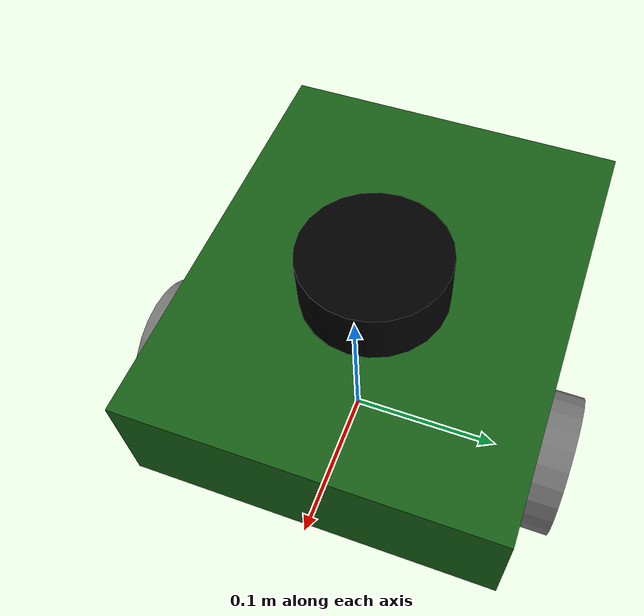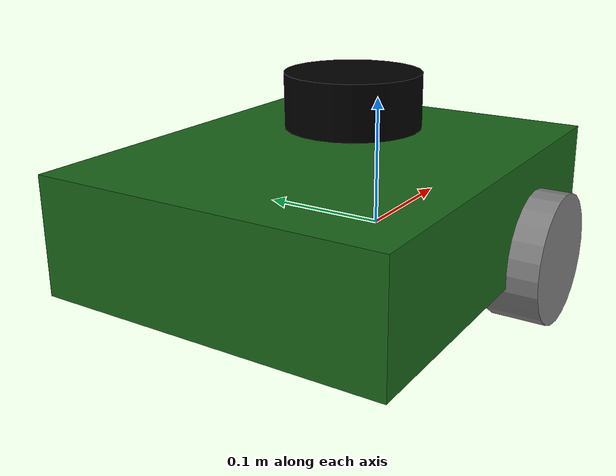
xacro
<?xml version="1.0"?>
<robot xmlns:xacro="http://www.ros.org/wiki/xacro"  name="robot">

    <xacro:arg name="use_ros2_control" default="true"/>
    <xacro:arg name="sim_mode" default="false"/>

    <xacro:include filename="robot_main.xacro" />

    <xacro:if value="$(arg use_ros2_control)">
        <xacro:include filename="ros2_control.xacro" />
    </xacro:if>

    <xacro:include filename="lidar.xacro" />

</robot>

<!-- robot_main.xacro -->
<robot xmlns:xacro="http://www.ros.org/wiki/xacro" >

    <xacro:include filename="inertial_macros.xacro"/>

    <xacro:property name="chassis_length" value="0.31"/>
    <xacro:property name="chassis_width" value="0.255"/>
    <xacro:property name="chassis_height" value="0.085"/>
    <xacro:property name="chassis_mass" value="2.8"/>
    <xacro:property name="wheel_radius" value="0.048"/>
    <xacro:property name="wheel_thickness" value="0.04"/>
    <xacro:property name="wheel_mass" value="0.05"/>
    <xacro:property name="wheel_offset_x" value="0.217"/>
    <xacro:property name="wheel_offset_y" value="0.13"/>
    <xacro:property name="wheel_offset_z" value="0.01"/>
    <xacro:property name="caster_wheel_radius" value="0.01"/>
    <xacro:property name="caster_wheel_mass" value="0.01"/>
    <xacro:property name="caster_wheel_offset_x" value="0.075"/>
    <xacro:property name="caster_wheel_offset_z" value="${wheel_offset_z - wheel_radius + caster_wheel_radius}"/>

    <material name="white">
        <color rgba="1 1 1 1" />
    </material>

    <material name="colormain">
        <color rgba="0.1 0.4 0.1 1"/>
    </material>

    <material name="gray">
        <color rgba="0.5 0.5 0.5 1"/>
    </material>

    <material name="black">
        <color rgba="0 0 0 1"/>
    </material>

    <material name="red">
        <color rgba="1 0 0 1"/>
    </material>

    <!-- Banh xe -->

    <link name="base_link">

    </link>

    <!-- toa do goc -->

    <joint name="base_footprint_joint" type="fixed">
        <parent link="base_link"/>
        <child link="base_footprint"/>
        <origin xyz="0 0 0" rpy="0 0 0"/>
    </joint>

    <link name="base_footprint">
    </link>

    <!-- khung robot -->

    <joint name="chassis_joint" type="fixed">
        <parent link="base_link"/>
        <child link="chassis"/>
        <origin xyz="${-wheel_offset_x} 0 ${-wheel_offset_z}"/>
    </joint>

    <link name="chassis">
        <visual>
            <origin xyz="${chassis_length/2} 0 ${chassis_height/2}"/>
            <geometry>
                <box size="${chassis_length} ${chassis_width} ${chassis_height}"/>
            </geometry>
            <material name="colormain"/>
        </visual>
        <collision>
            <origin xyz="${chassis_length/2} 0 ${chassis_height/2}"/>
            <geometry>
                <box size="${chassis_length} ${chassis_width} ${chassis_height}"/>
            </geometry>
        </collision>
        <xacro:inertial_box mass="0.5" x="${chassis_length}" y="${chassis_width}" z="${chassis_height}">
            <origin xyz="${chassis_length/2} 0 ${chassis_height/2}" rpy="0 0 0"/>
        </xacro:inertial_box>
    </link>

    <gazebo reference="chassis">
        <material>Gazebo/Colormain</material>
    </gazebo>

    <!-- Banh xe trai -->

    <joint name="banhxe_trai" type="continuous">
        <parent link="base_link"/>
        <child link="left_wheel"/>
        <origin xyz="0 ${wheel_offset_y} 0" rpy="-${pi/2} 0 0" />
        <axis xyz="0 0 1"/>
    </joint>

    <link name="left_wheel">
        <visual>
            <geometry>
                <cylinder radius="${wheel_radius}" length="${wheel_thickness}"/>
            </geometry>
            <material name="gray"/>
        </visual>
        <collision>
            <geometry>
                <sphere radius="${wheel_radius}"/>
            </geometry>
        </collision>
        <xacro:inertial_cylinder mass="${wheel_mass}" length="${wheel_thickness}" radius="${wheel_radius}">
            <origin xyz="0 0 0" rpy="0 0 0"/>
        </xacro:inertial_cylinder>
    </link>

    <gazebo reference="left_wheel">
        <material>Gazebo/Gray</material>
    </gazebo>

    <!-- Banh xe phai -->

    <joint name="banhxe_phai" type="continuous">
        <parent link="base_link"/>
        <child link="right_wheel"/>
        <origin xyz="0 ${-wheel_offset_y} 0" rpy="${pi/2} 0 0" />
        <axis xyz="0 0 -1"/>
    </joint>

    <link name="right_wheel">
        <visual>
            <geometry>
                <cylinder radius="${wheel_radius}" length="${wheel_thickness}"/>
            </geometry>
            <material name="gray"/>
        </visual>
        <collision>
            <geometry>
                <sphere radius="${wheel_radius}"/>
            </geometry>
        </collision>
        <xacro:inertial_cylinder mass="${wheel_mass}" length="${wheel_thickness}" radius="${wheel_radius}">
            <origin xyz="0 0 0" rpy="0 0 0"/>
        </xacro:inertial_cylinder>
    </link>

    <gazebo reference="right_wheel">
        <material>Gazebo/Gray</material>
    </gazebo>

    <!-- Banh xe truoc -->

    <joint name="caster_wheel_joint" type="fixed">
        <parent link="chassis"/>
        <child link="caster_wheel"/>
        <origin xyz="${caster_wheel_offset_x} 0 ${caster_wheel_offset_z}"/>
    </joint>

    <link name="caster_wheel">
        <visual>
            <geometry>
                <sphere radius="${caster_wheel_radius}"/>
            </geometry>
            <material name="white"/>
        </visual>
        <collision>
            <geometry>
                <sphere radius="${caster_wheel_radius}"/>
            </geometry>
        </collision>
        <xacro:inertial_sphere mass="${caster_wheel_mass}" radius="${caster_wheel_radius}">
            <origin xyz="0 0 0" rpy="0 0 0"/>
        </xacro:inertial_sphere>
    </link>

    <gazebo reference="caster_wheel">
        <material>Gazebo/White</material>
        <mu1 value="0.001"/>
        <mu2 value="0.001"/>
    </gazebo>

</robot>

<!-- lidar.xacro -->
<robot xmlns:xacro="http://www.ros.org/wiki/xacro" >

    <joint name="laser_joint" type="fixed">
        <parent link="chassis"/>
        <child link="laser_frame"/>
        <origin xyz="0.18 0 0.116" rpy="0 0 0"/>
    </joint>

    <link name="laser_frame">
        <visual>
            <geometry>
                <cylinder radius="0.05" length="0.04"/>
            </geometry>
            <material name="black"/>
        </visual>
        <visual>
            <origin xyz="0 0 -0.05"/>
            <geometry>
                <cylinder radius="0.01" length="0.1"/>
            </geometry>
            <material name="black"/>
        </visual>
        <collision>
            <geometry>
                <cylinder radius="0.05" length="0.04"/>
            </geometry>
        </collision>
        <xacro:inertial_cylinder mass="0.1" length="0.04" radius="0.05">
            <origin xyz="0 0 0" rpy="0 0 0"/>
        </xacro:inertial_cylinder>
    </link>

    <gazebo reference="laser_frame">
        <material>Gazebo/Black</material>

        <sensor name="laser" type="ray">
            <pose> 0 0 0 0 0 0 </pose>
            <visualize>false</visualize>
            <update_rate>10</update_rate>
            <ray>
                <scan>
                    <horizontal>
                        <samples>360</samples>
                        <min_angle>-3.14</min_angle>
                        <max_angle>3.14</max_angle>
                    </horizontal>
                </scan>
                <range>
                    <min>0.3</min>
                    <max>12</max>
                </range>
            </ray>
            <plugin name="laser_controller" filename="libgazebo_ros_ray_sensor.so">
                <ros>
                    <argument>~/out:=scan</argument>
                </ros>
                <output_type>sensor_msgs/LaserScan</output_type>
                <frame_name>laser_frame</frame_name>
            </plugin>
        </sensor>
    </gazebo>

</robot>
